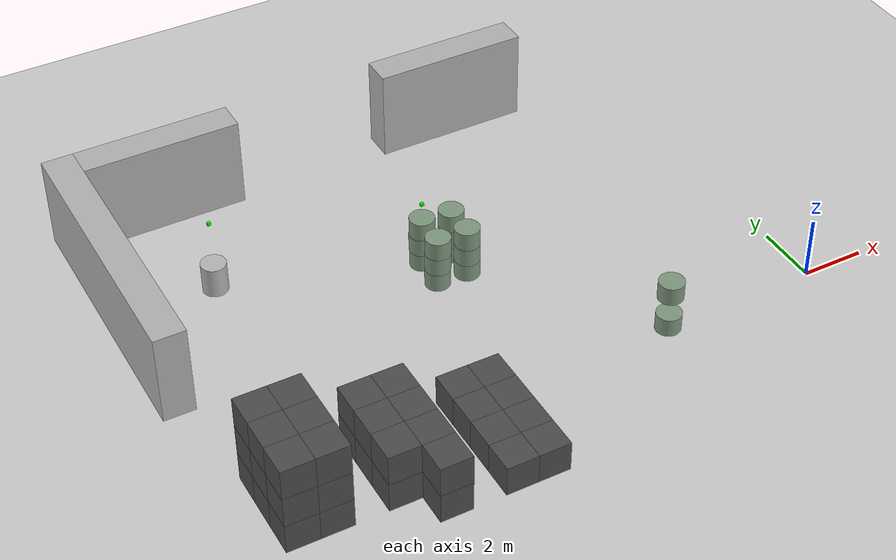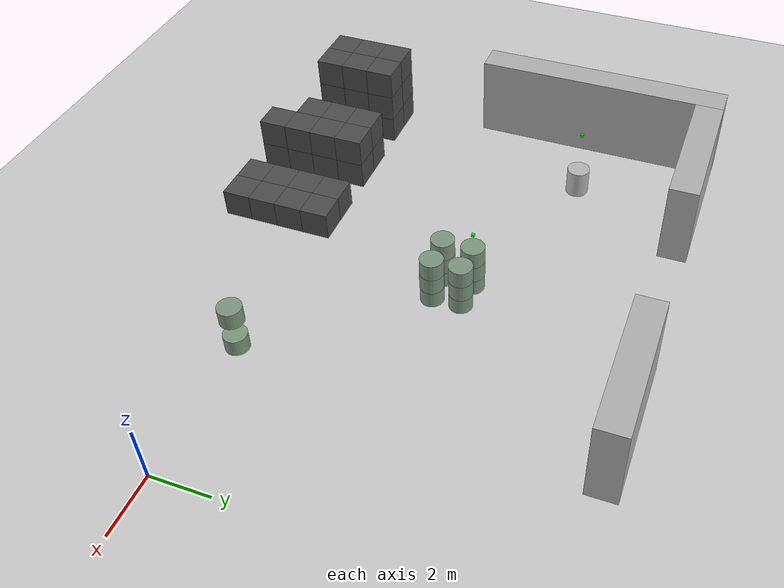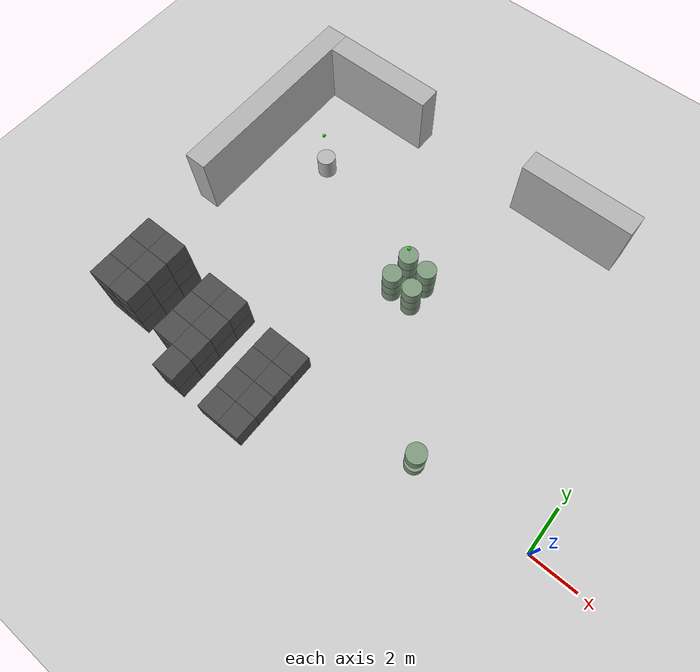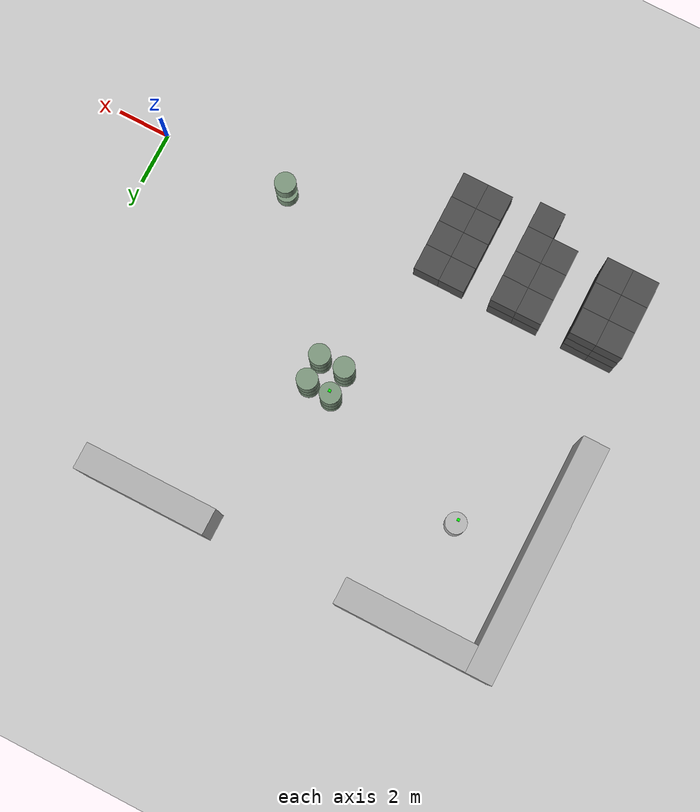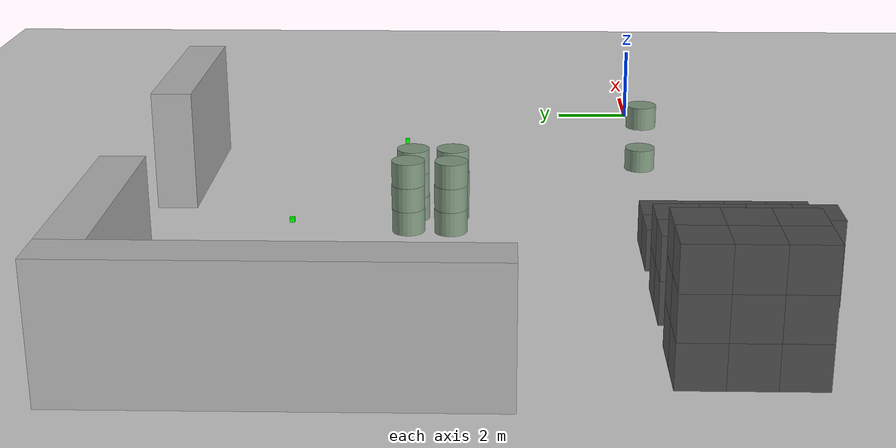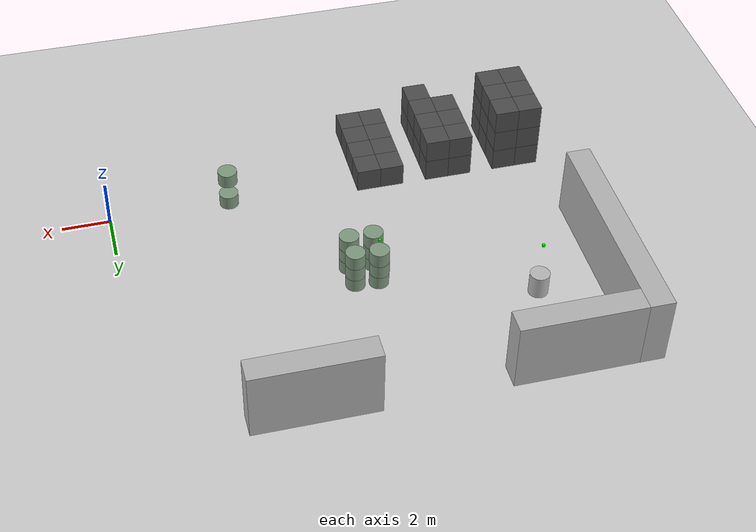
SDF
<sdf version="1.6">
 <world name="default">
  <model name="wall_1">
   <pose frame="sim_world">-19.0 8.0 1.5 0 0 0</pose>
   <static>True</static>
   <link name="wall_1_link">
    <inertial>
     <mass>100</mass>
     <inertia>
      <ixx>0.166667</ixx>
      <ixy>0</ixy>
      <ixz>0</ixz>
      <iyy>0.166667</iyy>
      <iyz>0</iyz>
      <izz>0.166667</izz>
     </inertia>
    </inertial>
    <collision name="wall_1_collision">
     <geometry><box><size>1.0 9.0 3.0</size></box></geometry>
     <max_contacts>100</max_contacts>
    </collision>
    <visual name="wall_1_visual">
     <geometry><box><size>1.0 9.0 3.0</size></box></geometry>
     <material><ambient>0.7 0.7 0.7 1</ambient><diffuse>0.7 0.7 0.7 1</diffuse></material>
    </visual>
   </link>
  </model>
  <model name="wall_9">
   <pose frame="sim_world">-16.0 12.0 1.5 0 0 0</pose>
   <static>True</static>
   <link name="wall_9_link">
    <inertial>
     <mass>100</mass>
     <inertia>
      <ixx>0.166667</ixx>
      <ixy>0</ixy>
      <ixz>0</ixz>
      <iyy>0.166667</iyy>
      <iyz>0</iyz>
      <izz>0.166667</izz>
     </inertia>
    </inertial>
    <collision name="wall_9_collision">
     <geometry><box><size>5.0 1.0 3.0</size></box></geometry>
     <max_contacts>100</max_contacts>
    </collision>
    <visual name="wall_9_visual">
     <geometry><box><size>5.0 1.0 3.0</size></box></geometry>
     <material><ambient>0.7 0.7 0.7 1</ambient><diffuse>0.7 0.7 0.7 1</diffuse></material>
    </visual>
   </link>
  </model>
  <model name="wall_10">
   <pose frame="sim_world">-6.0 12.0 1.5 0 0 0</pose>
   <static>True</static>
   <link name="wall_10_link">
    <inertial>
     <mass>100</mass>
     <inertia>
      <ixx>0.166667</ixx>
      <ixy>0</ixy>
      <ixz>0</ixz>
      <iyy>0.166667</iyy>
      <iyz>0</iyz>
      <izz>0.166667</izz>
     </inertia>
    </inertial>
    <collision name="wall_10_collision">
     <geometry><box><size>5.0 1.0 3.0</size></box></geometry>
     <max_contacts>100</max_contacts>
    </collision>
    <visual name="wall_10_visual">
     <geometry><box><size>5.0 1.0 3.0</size></box></geometry>
     <material><ambient>0.7 0.7 0.7 1</ambient><diffuse>0.7 0.7 0.7 1</diffuse></material>
    </visual>
   </link>
  </model>
  <model name="box_6">
   <pose frame="sim_world">-18.0 -2.0 0.5 0 -0 0</pose>
   <static>True</static>
   <link name="box_6_link">
    <inertial>
     <mass>100</mass>
     <inertia>
      <ixx>0.166667</ixx>
      <ixy>0</ixy>
      <ixz>0</ixz>
      <iyy>0.166667</iyy>
      <iyz>0</iyz>
      <izz>0.166667</izz>
     </inertia>
    </inertial>
    <collision name="box_6_collision">
     <geometry><box><size>1.0 1.0 1.0</size></box></geometry>
     <max_contacts>100</max_contacts>
    </collision>
    <visual name="box_6_visual">
     <geometry><box><size>1.0 1.0 1.0</size></box></geometry>
     <material><ambient>0.3 0.3 0.3 1</ambient><diffuse>0.3 0.3 0.3 1</diffuse></material>
    </visual>
   </link>
  </model>
  <model name="box_7">
   <pose frame="sim_world">-18.0 -2.0 1.5 0 -0 0</pose>
   <static>True</static>
   <link name="box_7_link">
    <inertial>
     <mass>100</mass>
     <inertia>
      <ixx>0.166667</ixx>
      <ixy>0</ixy>
      <ixz>0</ixz>
      <iyy>0.166667</iyy>
      <iyz>0</iyz>
      <izz>0.166667</izz>
     </inertia>
    </inertial>
    <collision name="box_7_collision">
     <geometry><box><size>1.0 1.0 1.0</size></box></geometry>
     <max_contacts>100</max_contacts>
    </collision>
    <visual name="box_7_visual">
     <geometry><box><size>1.0 1.0 1.0</size></box></geometry>
     <material><ambient>0.3 0.3 0.3 1</ambient><diffuse>0.3 0.3 0.3 1</diffuse></material>
    </visual>
   </link>
  </model>
  <model name="box_8">
   <pose frame="sim_world">-18.0 -2.0 2.5 0 -0 0</pose>
   <static>True</static>
   <link name="box_8_link">
    <inertial>
     <mass>100</mass>
     <inertia>
      <ixx>0.166667</ixx>
      <ixy>0</ixy>
      <ixz>0</ixz>
      <iyy>0.166667</iyy>
      <iyz>0</iyz>
      <izz>0.166667</izz>
     </inertia>
    </inertial>
    <collision name="box_8_collision">
     <geometry><box><size>1.0 1.0 1.0</size></box></geometry>
     <max_contacts>100</max_contacts>
    </collision>
    <visual name="box_8_visual">
     <geometry><box><size>1.0 1.0 1.0</size></box></geometry>
     <material><ambient>0.3 0.3 0.3 1</ambient><diffuse>0.3 0.3 0.3 1</diffuse></material>
    </visual>
   </link>
  </model>
  <model name="box_9">
   <pose frame="sim_world">-18.0 -1.0 0.5 0 -0 0</pose>
   <static>True</static>
   <link name="box_9_link">
    <inertial>
     <mass>100</mass>
     <inertia>
      <ixx>0.166667</ixx>
      <ixy>0</ixy>
      <ixz>0</ixz>
      <iyy>0.166667</iyy>
      <iyz>0</iyz>
      <izz>0.166667</izz>
     </inertia>
    </inertial>
    <collision name="box_9_collision">
     <geometry><box><size>1.0 1.0 1.0</size></box></geometry>
     <max_contacts>100</max_contacts>
    </collision>
    <visual name="box_9_visual">
     <geometry><box><size>1.0 1.0 1.0</size></box></geometry>
     <material><ambient>0.3 0.3 0.3 1</ambient><diffuse>0.3 0.3 0.3 1</diffuse></material>
    </visual>
   </link>
  </model>
  <model name="box_10">
   <pose frame="sim_world">-18.0 -1.0 1.5 0 -0 0</pose>
   <static>True</static>
   <link name="box_10_link">
    <inertial>
     <mass>100</mass>
     <inertia>
      <ixx>0.166667</ixx>
      <ixy>0</ixy>
      <ixz>0</ixz>
      <iyy>0.166667</iyy>
      <iyz>0</iyz>
      <izz>0.166667</izz>
     </inertia>
    </inertial>
    <collision name="box_10_collision">
     <geometry><box><size>1.0 1.0 1.0</size></box></geometry>
     <max_contacts>100</max_contacts>
    </collision>
    <visual name="box_10_visual">
     <geometry><box><size>1.0 1.0 1.0</size></box></geometry>
     <material><ambient>0.3 0.3 0.3 1</ambient><diffuse>0.3 0.3 0.3 1</diffuse></material>
    </visual>
   </link>
  </model>
  <model name="box_11">
   <pose frame="sim_world">-18.0 -1.0 2.5 0 -0 0</pose>
   <static>True</static>
   <link name="box_11_link">
    <inertial>
     <mass>100</mass>
     <inertia>
      <ixx>0.166667</ixx>
      <ixy>0</ixy>
      <ixz>0</ixz>
      <iyy>0.166667</iyy>
      <iyz>0</iyz>
      <izz>0.166667</izz>
     </inertia>
    </inertial>
    <collision name="box_11_collision">
     <geometry><box><size>1.0 1.0 1.0</size></box></geometry>
     <max_contacts>100</max_contacts>
    </collision>
    <visual name="box_11_visual">
     <geometry><box><size>1.0 1.0 1.0</size></box></geometry>
     <material><ambient>0.3 0.3 0.3 1</ambient><diffuse>0.3 0.3 0.3 1</diffuse></material>
    </visual>
   </link>
  </model>
  <model name="box_12">
   <pose frame="sim_world">-18.0 0.0 0.5 0 -0 0</pose>
   <static>True</static>
   <link name="box_12_link">
    <inertial>
     <mass>100</mass>
     <inertia>
      <ixx>0.166667</ixx>
      <ixy>0</ixy>
      <ixz>0</ixz>
      <iyy>0.166667</iyy>
      <iyz>0</iyz>
      <izz>0.166667</izz>
     </inertia>
    </inertial>
    <collision name="box_12_collision">
     <geometry><box><size>1.0 1.0 1.0</size></box></geometry>
     <max_contacts>100</max_contacts>
    </collision>
    <visual name="box_12_visual">
     <geometry><box><size>1.0 1.0 1.0</size></box></geometry>
     <material><ambient>0.3 0.3 0.3 1</ambient><diffuse>0.3 0.3 0.3 1</diffuse></material>
    </visual>
   </link>
  </model>
  <model name="box_13">
   <pose frame="sim_world">-18.0 0.0 1.5 0 -0 0</pose>
   <static>True</static>
   <link name="box_13_link">
    <inertial>
     <mass>100</mass>
     <inertia>
      <ixx>0.166667</ixx>
      <ixy>0</ixy>
      <ixz>0</ixz>
      <iyy>0.166667</iyy>
      <iyz>0</iyz>
      <izz>0.166667</izz>
     </inertia>
    </inertial>
    <collision name="box_13_collision">
     <geometry><box><size>1.0 1.0 1.0</size></box></geometry>
     <max_contacts>100</max_contacts>
    </collision>
    <visual name="box_13_visual">
     <geometry><box><size>1.0 1.0 1.0</size></box></geometry>
     <material><ambient>0.3 0.3 0.3 1</ambient><diffuse>0.3 0.3 0.3 1</diffuse></material>
    </visual>
   </link>
  </model>
  <model name="box_14">
   <pose frame="sim_world">-18.0 0.0 2.5 0 -0 0</pose>
   <static>True</static>
   <link name="box_14_link">
    <inertial>
     <mass>100</mass>
     <inertia>
      <ixx>0.166667</ixx>
      <ixy>0</ixy>
      <ixz>0</ixz>
      <iyy>0.166667</iyy>
      <iyz>0</iyz>
      <izz>0.166667</izz>
     </inertia>
    </inertial>
    <collision name="box_14_collision">
     <geometry><box><size>1.0 1.0 1.0</size></box></geometry>
     <max_contacts>100</max_contacts>
    </collision>
    <visual name="box_14_visual">
     <geometry><box><size>1.0 1.0 1.0</size></box></geometry>
     <material><ambient>0.3 0.3 0.3 1</ambient><diffuse>0.3 0.3 0.3 1</diffuse></material>
    </visual>
   </link>
  </model>
  <model name="box_21">
   <pose frame="sim_world">-17.0 -2.0 0.5 0 -0 0</pose>
   <static>True</static>
   <link name="box_21_link">
    <inertial>
     <mass>100</mass>
     <inertia>
      <ixx>0.166667</ixx>
      <ixy>0</ixy>
      <ixz>0</ixz>
      <iyy>0.166667</iyy>
      <iyz>0</iyz>
      <izz>0.166667</izz>
     </inertia>
    </inertial>
    <collision name="box_21_collision">
     <geometry><box><size>1.0 1.0 1.0</size></box></geometry>
     <max_contacts>100</max_contacts>
    </collision>
    <visual name="box_21_visual">
     <geometry><box><size>1.0 1.0 1.0</size></box></geometry>
     <material><ambient>0.3 0.3 0.3 1</ambient><diffuse>0.3 0.3 0.3 1</diffuse></material>
    </visual>
   </link>
  </model>
  <model name="box_22">
   <pose frame="sim_world">-17.0 -2.0 1.5 0 -0 0</pose>
   <static>True</static>
   <link name="box_22_link">
    <inertial>
     <mass>100</mass>
     <inertia>
      <ixx>0.166667</ixx>
      <ixy>0</ixy>
      <ixz>0</ixz>
      <iyy>0.166667</iyy>
      <iyz>0</iyz>
      <izz>0.166667</izz>
     </inertia>
    </inertial>
    <collision name="box_22_collision">
     <geometry><box><size>1.0 1.0 1.0</size></box></geometry>
     <max_contacts>100</max_contacts>
    </collision>
    <visual name="box_22_visual">
     <geometry><box><size>1.0 1.0 1.0</size></box></geometry>
     <material><ambient>0.3 0.3 0.3 1</ambient><diffuse>0.3 0.3 0.3 1</diffuse></material>
    </visual>
   </link>
  </model>
  <model name="box_23">
   <pose frame="sim_world">-17.0 -2.0 2.5 0 -0 0</pose>
   <static>True</static>
   <link name="box_23_link">
    <inertial>
     <mass>100</mass>
     <inertia>
      <ixx>0.166667</ixx>
      <ixy>0</ixy>
      <ixz>0</ixz>
      <iyy>0.166667</iyy>
      <iyz>0</iyz>
      <izz>0.166667</izz>
     </inertia>
    </inertial>
    <collision name="box_23_collision">
     <geometry><box><size>1.0 1.0 1.0</size></box></geometry>
     <max_contacts>100</max_contacts>
    </collision>
    <visual name="box_23_visual">
     <geometry><box><size>1.0 1.0 1.0</size></box></geometry>
     <material><ambient>0.3 0.3 0.3 1</ambient><diffuse>0.3 0.3 0.3 1</diffuse></material>
    </visual>
   </link>
  </model>
  <model name="box_24">
   <pose frame="sim_world">-17.0 -1.0 0.5 0 -0 0</pose>
   <static>True</static>
   <link name="box_24_link">
    <inertial>
     <mass>100</mass>
     <inertia>
      <ixx>0.166667</ixx>
      <ixy>0</ixy>
      <ixz>0</ixz>
      <iyy>0.166667</iyy>
      <iyz>0</iyz>
      <izz>0.166667</izz>
     </inertia>
    </inertial>
    <collision name="box_24_collision">
     <geometry><box><size>1.0 1.0 1.0</size></box></geometry>
     <max_contacts>100</max_contacts>
    </collision>
    <visual name="box_24_visual">
     <geometry><box><size>1.0 1.0 1.0</size></box></geometry>
     <material><ambient>0.3 0.3 0.3 1</ambient><diffuse>0.3 0.3 0.3 1</diffuse></material>
    </visual>
   </link>
  </model>
  <model name="box_25">
   <pose frame="sim_world">-17.0 -1.0 1.5 0 -0 0</pose>
   <static>True</static>
   <link name="box_25_link">
    <inertial>
     <mass>100</mass>
     <inertia>
      <ixx>0.166667</ixx>
      <ixy>0</ixy>
      <ixz>0</ixz>
      <iyy>0.166667</iyy>
      <iyz>0</iyz>
      <izz>0.166667</izz>
     </inertia>
    </inertial>
    <collision name="box_25_collision">
     <geometry><box><size>1.0 1.0 1.0</size></box></geometry>
     <max_contacts>100</max_contacts>
    </collision>
    <visual name="box_25_visual">
     <geometry><box><size>1.0 1.0 1.0</size></box></geometry>
     <material><ambient>0.3 0.3 0.3 1</ambient><diffuse>0.3 0.3 0.3 1</diffuse></material>
    </visual>
   </link>
  </model>
  <model name="box_26">
   <pose frame="sim_world">-17.0 -1.0 2.5 0 -0 0</pose>
   <static>True</static>
   <link name="box_26_link">
    <inertial>
     <mass>100</mass>
     <inertia>
      <ixx>0.166667</ixx>
      <ixy>0</ixy>
      <ixz>0</ixz>
      <iyy>0.166667</iyy>
      <iyz>0</iyz>
      <izz>0.166667</izz>
     </inertia>
    </inertial>
    <collision name="box_26_collision">
     <geometry><box><size>1.0 1.0 1.0</size></box></geometry>
     <max_contacts>100</max_contacts>
    </collision>
    <visual name="box_26_visual">
     <geometry><box><size>1.0 1.0 1.0</size></box></geometry>
     <material><ambient>0.3 0.3 0.3 1</ambient><diffuse>0.3 0.3 0.3 1</diffuse></material>
    </visual>
   </link>
  </model>
  <model name="box_27">
   <pose frame="sim_world">-17.0 0.0 0.5 0 -0 0</pose>
   <static>True</static>
   <link name="box_27_link">
    <inertial>
     <mass>100</mass>
     <inertia>
      <ixx>0.166667</ixx>
      <ixy>0</ixy>
      <ixz>0</ixz>
      <iyy>0.166667</iyy>
      <iyz>0</iyz>
      <izz>0.166667</izz>
     </inertia>
    </inertial>
    <collision name="box_27_collision">
     <geometry><box><size>1.0 1.0 1.0</size></box></geometry>
     <max_contacts>100</max_contacts>
    </collision>
    <visual name="box_27_visual">
     <geometry><box><size>1.0 1.0 1.0</size></box></geometry>
     <material><ambient>0.3 0.3 0.3 1</ambient><diffuse>0.3 0.3 0.3 1</diffuse></material>
    </visual>
   </link>
  </model>
  <model name="box_28">
   <pose frame="sim_world">-17.0 0.0 1.5 0 -0 0</pose>
   <static>True</static>
   <link name="box_28_link">
    <inertial>
     <mass>100</mass>
     <inertia>
      <ixx>0.166667</ixx>
      <ixy>0</ixy>
      <ixz>0</ixz>
      <iyy>0.166667</iyy>
      <iyz>0</iyz>
      <izz>0.166667</izz>
     </inertia>
    </inertial>
    <collision name="box_28_collision">
     <geometry><box><size>1.0 1.0 1.0</size></box></geometry>
     <max_contacts>100</max_contacts>
    </collision>
    <visual name="box_28_visual">
     <geometry><box><size>1.0 1.0 1.0</size></box></geometry>
     <material><ambient>0.3 0.3 0.3 1</ambient><diffuse>0.3 0.3 0.3 1</diffuse></material>
    </visual>
   </link>
  </model>
  <model name="box_29">
   <pose frame="sim_world">-17.0 0.0 2.5 0 -0 0</pose>
   <static>True</static>
   <link name="box_29_link">
    <inertial>
     <mass>100</mass>
     <inertia>
      <ixx>0.166667</ixx>
      <ixy>0</ixy>
      <ixz>0</ixz>
      <iyy>0.166667</iyy>
      <iyz>0</iyz>
      <izz>0.166667</izz>
     </inertia>
    </inertial>
    <collision name="box_29_collision">
     <geometry><box><size>1.0 1.0 1.0</size></box></geometry>
     <max_contacts>100</max_contacts>
    </collision>
    <visual name="box_29_visual">
     <geometry><box><size>1.0 1.0 1.0</size></box></geometry>
     <material><ambient>0.3 0.3 0.3 1</ambient><diffuse>0.3 0.3 0.3 1</diffuse></material>
    </visual>
   </link>
  </model>
  <model name="box_34">
   <pose frame="sim_world">-15.0 -2.0 0.5 0 -0 0</pose>
   <static>True</static>
   <link name="box_34_link">
    <inertial>
     <mass>100</mass>
     <inertia>
      <ixx>0.166667</ixx>
      <ixy>0</ixy>
      <ixz>0</ixz>
      <iyy>0.166667</iyy>
      <iyz>0</iyz>
      <izz>0.166667</izz>
     </inertia>
    </inertial>
    <collision name="box_34_collision">
     <geometry><box><size>1.0 1.0 1.0</size></box></geometry>
     <max_contacts>100</max_contacts>
    </collision>
    <visual name="box_34_visual">
     <geometry><box><size>1.0 1.0 1.0</size></box></geometry>
     <material><ambient>0.3 0.3 0.3 1</ambient><diffuse>0.3 0.3 0.3 1</diffuse></material>
    </visual>
   </link>
  </model>
  <model name="box_35">
   <pose frame="sim_world">-15.0 -2.0 1.5 0 -0 0</pose>
   <static>True</static>
   <link name="box_35_link">
    <inertial>
     <mass>100</mass>
     <inertia>
      <ixx>0.166667</ixx>
      <ixy>0</ixy>
      <ixz>0</ixz>
      <iyy>0.166667</iyy>
      <iyz>0</iyz>
      <izz>0.166667</izz>
     </inertia>
    </inertial>
    <collision name="box_35_collision">
     <geometry><box><size>1.0 1.0 1.0</size></box></geometry>
     <max_contacts>100</max_contacts>
    </collision>
    <visual name="box_35_visual">
     <geometry><box><size>1.0 1.0 1.0</size></box></geometry>
     <material><ambient>0.3 0.3 0.3 1</ambient><diffuse>0.3 0.3 0.3 1</diffuse></material>
    </visual>
   </link>
  </model>
  <model name="box_36">
   <pose frame="sim_world">-15.0 -1.0 0.5 0 -0 0</pose>
   <static>True</static>
   <link name="box_36_link">
    <inertial>
     <mass>100</mass>
     <inertia>
      <ixx>0.166667</ixx>
      <ixy>0</ixy>
      <ixz>0</ixz>
      <iyy>0.166667</iyy>
      <iyz>0</iyz>
      <izz>0.166667</izz>
     </inertia>
    </inertial>
    <collision name="box_36_collision">
     <geometry><box><size>1.0 1.0 1.0</size></box></geometry>
     <max_contacts>100</max_contacts>
    </collision>
    <visual name="box_36_visual">
     <geometry><box><size>1.0 1.0 1.0</size></box></geometry>
     <material><ambient>0.3 0.3 0.3 1</ambient><diffuse>0.3 0.3 0.3 1</diffuse></material>
    </visual>
   </link>
  </model>
  <model name="box_37">
   <pose frame="sim_world">-15.0 -1.0 1.5 0 -0 0</pose>
   <static>True</static>
   <link name="box_37_link">
    <inertial>
     <mass>100</mass>
     <inertia>
      <ixx>0.166667</ixx>
      <ixy>0</ixy>
      <ixz>0</ixz>
      <iyy>0.166667</iyy>
      <iyz>0</iyz>
      <izz>0.166667</izz>
     </inertia>
    </inertial>
    <collision name="box_37_collision">
     <geometry><box><size>1.0 1.0 1.0</size></box></geometry>
     <max_contacts>100</max_contacts>
    </collision>
    <visual name="box_37_visual">
     <geometry><box><size>1.0 1.0 1.0</size></box></geometry>
     <material><ambient>0.3 0.3 0.3 1</ambient><diffuse>0.3 0.3 0.3 1</diffuse></material>
    </visual>
   </link>
  </model>
  <model name="box_38">
   <pose frame="sim_world">-15.0 0.0 0.5 0 -0 0</pose>
   <static>True</static>
   <link name="box_38_link">
    <inertial>
     <mass>100</mass>
     <inertia>
      <ixx>0.166667</ixx>
      <ixy>0</ixy>
      <ixz>0</ixz>
      <iyy>0.166667</iyy>
      <iyz>0</iyz>
      <izz>0.166667</izz>
     </inertia>
    </inertial>
    <collision name="box_38_collision">
     <geometry><box><size>1.0 1.0 1.0</size></box></geometry>
     <max_contacts>100</max_contacts>
    </collision>
    <visual name="box_38_visual">
     <geometry><box><size>1.0 1.0 1.0</size></box></geometry>
     <material><ambient>0.3 0.3 0.3 1</ambient><diffuse>0.3 0.3 0.3 1</diffuse></material>
    </visual>
   </link>
  </model>
  <model name="box_39">
   <pose frame="sim_world">-15.0 0.0 1.5 0 -0 0</pose>
   <static>True</static>
   <link name="box_39_link">
    <inertial>
     <mass>100</mass>
     <inertia>
      <ixx>0.166667</ixx>
      <ixy>0</ixy>
      <ixz>0</ixz>
      <iyy>0.166667</iyy>
      <iyz>0</iyz>
      <izz>0.166667</izz>
     </inertia>
    </inertial>
    <collision name="box_39_collision">
     <geometry><box><size>1.0 1.0 1.0</size></box></geometry>
     <max_contacts>100</max_contacts>
    </collision>
    <visual name="box_39_visual">
     <geometry><box><size>1.0 1.0 1.0</size></box></geometry>
     <material><ambient>0.3 0.3 0.3 1</ambient><diffuse>0.3 0.3 0.3 1</diffuse></material>
    </visual>
   </link>
  </model>
  <model name="box_42">
   <pose frame="sim_world">-14.0 -3.0 0.5 0 -0 0</pose>
   <static>True</static>
   <link name="box_42_link">
    <inertial>
     <mass>100</mass>
     <inertia>
      <ixx>0.166667</ixx>
      <ixy>0</ixy>
      <ixz>0</ixz>
      <iyy>0.166667</iyy>
      <iyz>0</iyz>
      <izz>0.166667</izz>
     </inertia>
    </inertial>
    <collision name="box_42_collision">
     <geometry><box><size>1.0 1.0 1.0</size></box></geometry>
     <max_contacts>100</max_contacts>
    </collision>
    <visual name="box_42_visual">
     <geometry><box><size>1.0 1.0 1.0</size></box></geometry>
     <material><ambient>0.3 0.3 0.3 1</ambient><diffuse>0.3 0.3 0.3 1</diffuse></material>
    </visual>
   </link>
  </model>
  <model name="box_43">
   <pose frame="sim_world">-14.0 -3.0 1.5 0 -0 0</pose>
   <static>True</static>
   <link name="box_43_link">
    <inertial>
     <mass>100</mass>
     <inertia>
      <ixx>0.166667</ixx>
      <ixy>0</ixy>
      <ixz>0</ixz>
      <iyy>0.166667</iyy>
      <iyz>0</iyz>
      <izz>0.166667</izz>
     </inertia>
    </inertial>
    <collision name="box_43_collision">
     <geometry><box><size>1.0 1.0 1.0</size></box></geometry>
     <max_contacts>100</max_contacts>
    </collision>
    <visual name="box_43_visual">
     <geometry><box><size>1.0 1.0 1.0</size></box></geometry>
     <material><ambient>0.3 0.3 0.3 1</ambient><diffuse>0.3 0.3 0.3 1</diffuse></material>
    </visual>
   </link>
  </model>
  <model name="box_44">
   <pose frame="sim_world">-14.0 -2.0 0.5 0 -0 0</pose>
   <static>True</static>
   <link name="box_44_link">
    <inertial>
     <mass>100</mass>
     <inertia>
      <ixx>0.166667</ixx>
      <ixy>0</ixy>
      <ixz>0</ixz>
      <iyy>0.166667</iyy>
      <iyz>0</iyz>
      <izz>0.166667</izz>
     </inertia>
    </inertial>
    <collision name="box_44_collision">
     <geometry><box><size>1.0 1.0 1.0</size></box></geometry>
     <max_contacts>100</max_contacts>
    </collision>
    <visual name="box_44_visual">
     <geometry><box><size>1.0 1.0 1.0</size></box></geometry>
     <material><ambient>0.3 0.3 0.3 1</ambient><diffuse>0.3 0.3 0.3 1</diffuse></material>
    </visual>
   </link>
  </model>
  <model name="box_45">
   <pose frame="sim_world">-14.0 -2.0 1.5 0 -0 0</pose>
   <static>True</static>
   <link name="box_45_link">
    <inertial>
     <mass>100</mass>
     <inertia>
      <ixx>0.166667</ixx>
      <ixy>0</ixy>
      <ixz>0</ixz>
      <iyy>0.166667</iyy>
      <iyz>0</iyz>
      <izz>0.166667</izz>
     </inertia>
    </inertial>
    <collision name="box_45_collision">
     <geometry><box><size>1.0 1.0 1.0</size></box></geometry>
     <max_contacts>100</max_contacts>
    </collision>
    <visual name="box_45_visual">
     <geometry><box><size>1.0 1.0 1.0</size></box></geometry>
     <material><ambient>0.3 0.3 0.3 1</ambient><diffuse>0.3 0.3 0.3 1</diffuse></material>
    </visual>
   </link>
  </model>
  <model name="box_46">
   <pose frame="sim_world">-14.0 -1.0 0.5 0 -0 0</pose>
   <static>True</static>
   <link name="box_46_link">
    <inertial>
     <mass>100</mass>
     <inertia>
      <ixx>0.166667</ixx>
      <ixy>0</ixy>
      <ixz>0</ixz>
      <iyy>0.166667</iyy>
      <iyz>0</iyz>
      <izz>0.166667</izz>
     </inertia>
    </inertial>
    <collision name="box_46_collision">
     <geometry><box><size>1.0 1.0 1.0</size></box></geometry>
     <max_contacts>100</max_contacts>
    </collision>
    <visual name="box_46_visual">
     <geometry><box><size>1.0 1.0 1.0</size></box></geometry>
     <material><ambient>0.3 0.3 0.3 1</ambient><diffuse>0.3 0.3 0.3 1</diffuse></material>
    </visual>
   </link>
  </model>
  <model name="box_47">
   <pose frame="sim_world">-14.0 -1.0 1.5 0 -0 0</pose>
   <static>True</static>
   <link name="box_47_link">
    <inertial>
     <mass>100</mass>
     <inertia>
      <ixx>0.166667</ixx>
      <ixy>0</ixy>
      <ixz>0</ixz>
      <iyy>0.166667</iyy>
      <iyz>0</iyz>
      <izz>0.166667</izz>
     </inertia>
    </inertial>
    <collision name="box_47_collision">
     <geometry><box><size>1.0 1.0 1.0</size></box></geometry>
     <max_contacts>100</max_contacts>
    </collision>
    <visual name="box_47_visual">
     <geometry><box><size>1.0 1.0 1.0</size></box></geometry>
     <material><ambient>0.3 0.3 0.3 1</ambient><diffuse>0.3 0.3 0.3 1</diffuse></material>
    </visual>
   </link>
  </model>
  <model name="box_48">
   <pose frame="sim_world">-14.0 0.0 0.5 0 -0 0</pose>
   <static>True</static>
   <link name="box_48_link">
    <inertial>
     <mass>100</mass>
     <inertia>
      <ixx>0.166667</ixx>
      <ixy>0</ixy>
      <ixz>0</ixz>
      <iyy>0.166667</iyy>
      <iyz>0</iyz>
      <izz>0.166667</izz>
     </inertia>
    </inertial>
    <collision name="box_48_collision">
     <geometry><box><size>1.0 1.0 1.0</size></box></geometry>
     <max_contacts>100</max_contacts>
    </collision>
    <visual name="box_48_visual">
     <geometry><box><size>1.0 1.0 1.0</size></box></geometry>
     <material><ambient>0.3 0.3 0.3 1</ambient><diffuse>0.3 0.3 0.3 1</diffuse></material>
    </visual>
   </link>
  </model>
  <model name="box_49">
   <pose frame="sim_world">-14.0 0.0 1.5 0 -0 0</pose>
   <static>True</static>
   <link name="box_49_link">
    <inertial>
     <mass>100</mass>
     <inertia>
      <ixx>0.166667</ixx>
      <ixy>0</ixy>
      <ixz>0</ixz>
      <iyy>0.166667</iyy>
      <iyz>0</iyz>
      <izz>0.166667</izz>
     </inertia>
    </inertial>
    <collision name="box_49_collision">
     <geometry><box><size>1.0 1.0 1.0</size></box></geometry>
     <max_contacts>100</max_contacts>
    </collision>
    <visual name="box_49_visual">
     <geometry><box><size>1.0 1.0 1.0</size></box></geometry>
     <material><ambient>0.3 0.3 0.3 1</ambient><diffuse>0.3 0.3 0.3 1</diffuse></material>
    </visual>
   </link>
  </model>
  <model name="box_51">
   <pose frame="sim_world">-12.0 -3.0 0.5 0 -0 0</pose>
   <static>True</static>
   <link name="box_51_link">
    <inertial>
     <mass>100</mass>
     <inertia>
      <ixx>0.166667</ixx>
      <ixy>0</ixy>
      <ixz>0</ixz>
      <iyy>0.166667</iyy>
      <iyz>0</iyz>
      <izz>0.166667</izz>
     </inertia>
    </inertial>
    <collision name="box_51_collision">
     <geometry><box><size>1.0 1.0 1.0</size></box></geometry>
     <max_contacts>100</max_contacts>
    </collision>
    <visual name="box_51_visual">
     <geometry><box><size>1.0 1.0 1.0</size></box></geometry>
     <material><ambient>0.3 0.3 0.3 1</ambient><diffuse>0.3 0.3 0.3 1</diffuse></material>
    </visual>
   </link>
  </model>
  <model name="box_52">
   <pose frame="sim_world">-12.0 -2.0 0.5 0 -0 0</pose>
   <static>True</static>
   <link name="box_52_link">
    <inertial>
     <mass>100</mass>
     <inertia>
      <ixx>0.166667</ixx>
      <ixy>0</ixy>
      <ixz>0</ixz>
      <iyy>0.166667</iyy>
      <iyz>0</iyz>
      <izz>0.166667</izz>
     </inertia>
    </inertial>
    <collision name="box_52_collision">
     <geometry><box><size>1.0 1.0 1.0</size></box></geometry>
     <max_contacts>100</max_contacts>
    </collision>
    <visual name="box_52_visual">
     <geometry><box><size>1.0 1.0 1.0</size></box></geometry>
     <material><ambient>0.3 0.3 0.3 1</ambient><diffuse>0.3 0.3 0.3 1</diffuse></material>
    </visual>
   </link>
  </model>
  <model name="box_53">
   <pose frame="sim_world">-12.0 -1.0 0.5 0 -0 0</pose>
   <static>True</static>
   <link name="box_53_link">
    <inertial>
     <mass>100</mass>
     <inertia>
      <ixx>0.166667</ixx>
      <ixy>0</ixy>
      <ixz>0</ixz>
      <iyy>0.166667</iyy>
      <iyz>0</iyz>
      <izz>0.166667</izz>
     </inertia>
    </inertial>
    <collision name="box_53_collision">
     <geometry><box><size>1.0 1.0 1.0</size></box></geometry>
     <max_contacts>100</max_contacts>
    </collision>
    <visual name="box_53_visual">
     <geometry><box><size>1.0 1.0 1.0</size></box></geometry>
     <material><ambient>0.3 0.3 0.3 1</ambient><diffuse>0.3 0.3 0.3 1</diffuse></material>
    </visual>
   </link>
  </model>
  <model name="box_54">
   <pose frame="sim_world">-12.0 0.0 0.5 0 -0 0</pose>
   <static>True</static>
   <link name="box_54_link">
    <inertial>
     <mass>100</mass>
     <inertia>
      <ixx>0.166667</ixx>
      <ixy>0</ixy>
      <ixz>0</ixz>
      <iyy>0.166667</iyy>
      <iyz>0</iyz>
      <izz>0.166667</izz>
     </inertia>
    </inertial>
    <collision name="box_54_collision">
     <geometry><box><size>1.0 1.0 1.0</size></box></geometry>
     <max_contacts>100</max_contacts>
    </collision>
    <visual name="box_54_visual">
     <geometry><box><size>1.0 1.0 1.0</size></box></geometry>
     <material><ambient>0.3 0.3 0.3 1</ambient><diffuse>0.3 0.3 0.3 1</diffuse></material>
    </visual>
   </link>
  </model>
  <model name="box_56">
   <pose frame="sim_world">-11.0 -3.0 0.5 0 -0 0</pose>
   <static>True</static>
   <link name="box_56_link">
    <inertial>
     <mass>100</mass>
     <inertia>
      <ixx>0.166667</ixx>
      <ixy>0</ixy>
      <ixz>0</ixz>
      <iyy>0.166667</iyy>
      <iyz>0</iyz>
      <izz>0.166667</izz>
     </inertia>
    </inertial>
    <collision name="box_56_collision">
     <geometry><box><size>1.0 1.0 1.0</size></box></geometry>
     <max_contacts>100</max_contacts>
    </collision>
    <visual name="box_56_visual">
     <geometry><box><size>1.0 1.0 1.0</size></box></geometry>
     <material><ambient>0.3 0.3 0.3 1</ambient><diffuse>0.3 0.3 0.3 1</diffuse></material>
    </visual>
   </link>
  </model>
  <model name="box_57">
   <pose frame="sim_world">-11.0 -2.0 0.5 0 -0 0</pose>
   <static>True</static>
   <link name="box_57_link">
    <inertial>
     <mass>100</mass>
     <inertia>
      <ixx>0.166667</ixx>
      <ixy>0</ixy>
      <ixz>0</ixz>
      <iyy>0.166667</iyy>
      <iyz>0</iyz>
      <izz>0.166667</izz>
     </inertia>
    </inertial>
    <collision name="box_57_collision">
     <geometry><box><size>1.0 1.0 1.0</size></box></geometry>
     <max_contacts>100</max_contacts>
    </collision>
    <visual name="box_57_visual">
     <geometry><box><size>1.0 1.0 1.0</size></box></geometry>
     <material><ambient>0.3 0.3 0.3 1</ambient><diffuse>0.3 0.3 0.3 1</diffuse></material>
    </visual>
   </link>
  </model>
  <model name="box_58">
   <pose frame="sim_world">-11.0 -1.0 0.5 0 -0 0</pose>
   <static>True</static>
   <link name="box_58_link">
    <inertial>
     <mass>100</mass>
     <inertia>
      <ixx>0.166667</ixx>
      <ixy>0</ixy>
      <ixz>0</ixz>
      <iyy>0.166667</iyy>
      <iyz>0</iyz>
      <izz>0.166667</izz>
     </inertia>
    </inertial>
    <collision name="box_58_collision">
     <geometry><box><size>1.0 1.0 1.0</size></box></geometry>
     <max_contacts>100</max_contacts>
    </collision>
    <visual name="box_58_visual">
     <geometry><box><size>1.0 1.0 1.0</size></box></geometry>
     <material><ambient>0.3 0.3 0.3 1</ambient><diffuse>0.3 0.3 0.3 1</diffuse></material>
    </visual>
   </link>
  </model>
  <model name="box_59">
   <pose frame="sim_world">-11.0 0.0 0.5 0 -0 0</pose>
   <static>True</static>
   <link name="box_59_link">
    <inertial>
     <mass>100</mass>
     <inertia>
      <ixx>0.166667</ixx>
      <ixy>0</ixy>
      <ixz>0</ixz>
      <iyy>0.166667</iyy>
      <iyz>0</iyz>
      <izz>0.166667</izz>
     </inertia>
    </inertial>
    <collision name="box_59_collision">
     <geometry><box><size>1.0 1.0 1.0</size></box></geometry>
     <max_contacts>100</max_contacts>
    </collision>
    <visual name="box_59_visual">
     <geometry><box><size>1.0 1.0 1.0</size></box></geometry>
     <material><ambient>0.3 0.3 0.3 1</ambient><diffuse>0.3 0.3 0.3 1</diffuse></material>
    </visual>
   </link>
  </model>
  <model name="cylinder_42">
   <pose frame="sim_world">-10.0202933208 5.0030478125 0.3 0 -0 0</pose>
   <static>True</static>
   <link name="cylinder_42_link">
    <inertial>
     <mass>100</mass>
     <inertia><ixx>0.145833</ixx><ixy>0</ixy><ixz>0</ixz><iyy>0.145833</iyy><iyz>0</iyz><izz>0.125</izz></inertia>
    </inertial>
    <collision name="cylinder_42_collision">
     <geometry><cylinder><length>0.6</length><radius>0.4</radius></cylinder></geometry>
     <max_contacts>100</max_contacts>
    </collision>
    <visual name="cylinder_42_visual">
     <geometry><cylinder><length>0.6</length><radius>0.4</radius></cylinder></geometry>
     <material><ambient>0.5 0.6 0.5 1</ambient><diffuse>0.5 0.6 0.5 1</diffuse></material>
    </visual>
   </link>
  </model>
  <model name="cylinder_43">
   <pose frame="sim_world">-10.0160368584 5.00052435981 0.9 0 -0 0</pose>
   <static>True</static>
   <link name="cylinder_43_link">
    <inertial>
     <mass>100</mass>
     <inertia><ixx>0.145833</ixx><ixy>0</ixy><ixz>0</ixz><iyy>0.145833</iyy><iyz>0</iyz><izz>0.125</izz></inertia>
    </inertial>
    <collision name="cylinder_43_collision">
     <geometry><cylinder><length>0.6</length><radius>0.4</radius></cylinder></geometry>
     <max_contacts>100</max_contacts>
    </collision>
    <visual name="cylinder_43_visual">
     <geometry><cylinder><length>0.6</length><radius>0.4</radius></cylinder></geometry>
     <material><ambient>0.5 0.6 0.5 1</ambient><diffuse>0.5 0.6 0.5 1</diffuse></material>
    </visual>
   </link>
  </model>
  <model name="cylinder_44">
   <pose frame="sim_world">-10.0080171585 4.98920138637 1.5 0 -0 0</pose>
   <static>True</static>
   <link name="cylinder_44_link">
    <inertial>
     <mass>100</mass>
     <inertia><ixx>0.145833</ixx><ixy>0</ixy><ixz>0</ixz><iyy>0.145833</iyy><iyz>0</iyz><izz>0.125</izz></inertia>
    </inertial>
    <collision name="cylinder_44_collision">
     <geometry><cylinder><length>0.6</length><radius>0.4</radius></cylinder></geometry>
     <max_contacts>100</max_contacts>
    </collision>
    <visual name="cylinder_44_visual">
     <geometry><cylinder><length>0.6</length><radius>0.4</radius></cylinder></geometry>
     <material><ambient>0.5 0.6 0.5 1</ambient><diffuse>0.5 0.6 0.5 1</diffuse></material>
    </visual>
   </link>
  </model>
  <model name="cylinder_45">
   <pose frame="sim_world">-9.99338973556 6.03151803693 0.3 0 -0 0</pose>
   <static>True</static>
   <link name="cylinder_45_link">
    <inertial>
     <mass>100</mass>
     <inertia><ixx>0.145833</ixx><ixy>0</ixy><ixz>0</ixz><iyy>0.145833</iyy><iyz>0</iyz><izz>0.125</izz></inertia>
    </inertial>
    <collision name="cylinder_45_collision">
     <geometry><cylinder><length>0.6</length><radius>0.4</radius></cylinder></geometry>
     <max_contacts>100</max_contacts>
    </collision>
    <visual name="cylinder_45_visual">
     <geometry><cylinder><length>0.6</length><radius>0.4</radius></cylinder></geometry>
     <material><ambient>0.5 0.6 0.5 1</ambient><diffuse>0.5 0.6 0.5 1</diffuse></material>
    </visual>
   </link>
   <model name="radiation_source_cylinder_45">
    <static>true</static>
    <link name="link_radiation_source_cylinder_45">
     <visual name="visual_radiation_source_cylinder_45_0">
      <geometry><box><size>0.1 0.1 0.1</size></box></geometry>
      <material><ambient>1 0.0  0 1.0</ambient><diffuse>1 0.0  0 1.0</diffuse></material>
     </visual>
     <visual name="visual_radiation_source_cylinder_45_1">
      <pose>0 0 2.0 0 0 0</pose>
      <geometry><box><size>0.1 0.1 0.1</size></box></geometry>
      <material><ambient>0 1.0  0 1.0</ambient><diffuse>0 1.0  0 1.0</diffuse></material>
     </visual>
     <sensor name="radiation_source_cylinder_45" type="radiation_source">
      <always_on>1</always_on>
      <update_rate>1.0</update_rate>
      <topic>source_2/gamma</topic>
      <plugin filename="libradiation_source_plugin.so" name="radiation_source_plugin"/>
     </sensor>
    </link>
   </model>
  </model>
  <model name="cylinder_46">
   <pose frame="sim_world">-10.0088004719 6.03712128335 0.9 0 -0 0</pose>
   <static>True</static>
   <link name="cylinder_46_link">
    <inertial>
     <mass>100</mass>
     <inertia><ixx>0.145833</ixx><ixy>0</ixy><ixz>0</ixz><iyy>0.145833</iyy><iyz>0</iyz><izz>0.125</izz></inertia>
    </inertial>
    <collision name="cylinder_46_collision">
     <geometry><cylinder><length>0.6</length><radius>0.4</radius></cylinder></geometry>
     <max_contacts>100</max_contacts>
    </collision>
    <visual name="cylinder_46_visual">
     <geometry><cylinder><length>0.6</length><radius>0.4</radius></cylinder></geometry>
     <material><ambient>0.5 0.6 0.5 1</ambient><diffuse>0.5 0.6 0.5 1</diffuse></material>
    </visual>
   </link>
  </model>
  <model name="cylinder_47">
   <pose frame="sim_world">-9.99636193501 6.03040588928 1.5 0 -0 0</pose>
   <static>True</static>
   <link name="cylinder_47_link">
    <inertial>
     <mass>100</mass>
     <inertia><ixx>0.145833</ixx><ixy>0</ixy><ixz>0</ixz><iyy>0.145833</iyy><iyz>0</iyz><izz>0.125</izz></inertia>
    </inertial>
    <collision name="cylinder_47_collision">
     <geometry><cylinder><length>0.6</length><radius>0.4</radius></cylinder></geometry>
     <max_contacts>100</max_contacts>
    </collision>
    <visual name="cylinder_47_visual">
     <geometry><cylinder><length>0.6</length><radius>0.4</radius></cylinder></geometry>
     <material><ambient>0.5 0.6 0.5 1</ambient><diffuse>0.5 0.6 0.5 1</diffuse></material>
    </visual>
   </link>
  </model>
  <model name="cylinder_48">
   <pose frame="sim_world">-9.02334739979 4.97692593154 0.3 0 -0 0</pose>
   <static>True</static>
   <link name="cylinder_48_link">
    <inertial>
     <mass>100</mass>
     <inertia><ixx>0.145833</ixx><ixy>0</ixy><ixz>0</ixz><iyy>0.145833</iyy><iyz>0</iyz><izz>0.125</izz></inertia>
    </inertial>
    <collision name="cylinder_48_collision">
     <geometry><cylinder><length>0.6</length><radius>0.4</radius></cylinder></geometry>
     <max_contacts>100</max_contacts>
    </collision>
    <visual name="cylinder_48_visual">
     <geometry><cylinder><length>0.6</length><radius>0.4</radius></cylinder></geometry>
     <material><ambient>0.5 0.6 0.5 1</ambient><diffuse>0.5 0.6 0.5 1</diffuse></material>
    </visual>
   </link>
  </model>
  <model name="cylinder_49">
   <pose frame="sim_world">-9.02772871434 4.96734218823 0.9 0 -0 0</pose>
   <static>True</static>
   <link name="cylinder_49_link">
    <inertial>
     <mass>100</mass>
     <inertia><ixx>0.145833</ixx><ixy>0</ixy><ixz>0</ixz><iyy>0.145833</iyy><iyz>0</iyz><izz>0.125</izz></inertia>
    </inertial>
    <collision name="cylinder_49_collision">
     <geometry><cylinder><length>0.6</length><radius>0.4</radius></cylinder></geometry>
     <max_contacts>100</max_contacts>
    </collision>
    <visual name="cylinder_49_visual">
     <geometry><cylinder><length>0.6</length><radius>0.4</radius></cylinder></geometry>
     <material><ambient>0.5 0.6 0.5 1</ambient><diffuse>0.5 0.6 0.5 1</diffuse></material>
    </visual>
   </link>
  </model>
  <model name="cylinder_50">
   <pose frame="sim_world">-9.02396796643 4.97896215638 1.5 0 -0 0</pose>
   <static>True</static>
   <link name="cylinder_50_link">
    <inertial>
     <mass>100</mass>
     <inertia><ixx>0.145833</ixx><ixy>0</ixy><ixz>0</ixz><iyy>0.145833</iyy><iyz>0</iyz><izz>0.125</izz></inertia>
    </inertial>
    <collision name="cylinder_50_collision">
     <geometry><cylinder><length>0.6</length><radius>0.4</radius></cylinder></geometry>
     <max_contacts>100</max_contacts>
    </collision>
    <visual name="cylinder_50_visual">
     <geometry><cylinder><length>0.6</length><radius>0.4</radius></cylinder></geometry>
     <material><ambient>0.5 0.6 0.5 1</ambient><diffuse>0.5 0.6 0.5 1</diffuse></material>
    </visual>
   </link>
  </model>
  <model name="cylinder_51">
   <pose frame="sim_world">-9.05182866777 5.95392791205 0.3 0 -0 0</pose>
   <static>True</static>
   <link name="cylinder_51_link">
    <inertial>
     <mass>100</mass>
     <inertia><ixx>0.145833</ixx><ixy>0</ixy><ixz>0</ixz><iyy>0.145833</iyy><iyz>0</iyz><izz>0.125</izz></inertia>
    </inertial>
    <collision name="cylinder_51_collision">
     <geometry><cylinder><length>0.6</length><radius>0.4</radius></cylinder></geometry>
     <max_contacts>100</max_contacts>
    </collision>
    <visual name="cylinder_51_visual">
     <geometry><cylinder><length>0.6</length><radius>0.4</radius></cylinder></geometry>
     <material><ambient>0.5 0.6 0.5 1</ambient><diffuse>0.5 0.6 0.5 1</diffuse></material>
    </visual>
   </link>
  </model>
  <model name="cylinder_52">
   <pose frame="sim_world">-9.04150532906 5.95996382125 0.9 0 -0 0</pose>
   <static>True</static>
   <link name="cylinder_52_link">
    <inertial>
     <mass>100</mass>
     <inertia><ixx>0.145833</ixx><ixy>0</ixy><ixz>0</ixz><iyy>0.145833</iyy><iyz>0</iyz><izz>0.125</izz></inertia>
    </inertial>
    <collision name="cylinder_52_collision">
     <geometry><cylinder><length>0.6</length><radius>0.4</radius></cylinder></geometry>
     <max_contacts>100</max_contacts>
    </collision>
    <visual name="cylinder_52_visual">
     <geometry><cylinder><length>0.6</length><radius>0.4</radius></cylinder></geometry>
     <material><ambient>0.5 0.6 0.5 1</ambient><diffuse>0.5 0.6 0.5 1</diffuse></material>
    </visual>
   </link>
  </model>
  <model name="cylinder_53">
   <pose frame="sim_world">-9.04081474595 5.95554203454 1.5 0 -0 0</pose>
   <static>True</static>
   <link name="cylinder_53_link">
    <inertial>
     <mass>100</mass>
     <inertia><ixx>0.145833</ixx><ixy>0</ixy><ixz>0</ixz><iyy>0.145833</iyy><iyz>0</iyz><izz>0.125</izz></inertia>
    </inertial>
    <collision name="cylinder_53_collision">
     <geometry><cylinder><length>0.6</length><radius>0.4</radius></cylinder></geometry>
     <max_contacts>100</max_contacts>
    </collision>
    <visual name="cylinder_53_visual">
     <geometry><cylinder><length>0.6</length><radius>0.4</radius></cylinder></geometry>
     <material><ambient>0.5 0.6 0.5 1</ambient><diffuse>0.5 0.6 0.5 1</diffuse></material>
    </visual>
   </link>
  </model>
  <model name="cylinder_69">
   <pose frame="sim_world">-5.03713192794 -0.0112006850342 0.3 0 -0 0</pose>
   <static>True</static>
   <link name="cylinder_69_link">
    <inertial>
     <mass>100</mass>
     <inertia><ixx>0.145833</ixx><ixy>0</ixy><ixz>0</ixz><iyy>0.145833</iyy><iyz>0</iyz><izz>0.125</izz></inertia>
    </inertial>
    <collision name="cylinder_69_collision">
     <geometry><cylinder><length>0.6</length><radius>0.4</radius></cylinder></geometry>
     <max_contacts>100</max_contacts>
    </collision>
    <visual name="cylinder_69_visual">
     <geometry><cylinder><length>0.6</length><radius>0.4</radius></cylinder></geometry>
     <material><ambient>0.5 0.6 0.5 1</ambient><diffuse>0.5 0.6 0.5 1</diffuse></material>
    </visual>
   </link>
  </model>
  <model name="cylinder_71">
   <pose frame="sim_world">-5.03649922881 -0.00224045354012 1.5 0 -0 0</pose>
   <static>True</static>
   <link name="cylinder_71_link">
    <inertial>
     <mass>100</mass>
     <inertia><ixx>0.145833</ixx><ixy>0</ixy><ixz>0</ixz><iyy>0.145833</iyy><iyz>0</iyz><izz>0.125</izz></inertia>
    </inertial>
    <collision name="cylinder_71_collision">
     <geometry><cylinder><length>0.6</length><radius>0.4</radius></cylinder></geometry>
     <max_contacts>100</max_contacts>
    </collision>
    <visual name="cylinder_71_visual">
     <geometry><cylinder><length>0.6</length><radius>0.4</radius></cylinder></geometry>
     <material><ambient>0.5 0.6 0.5 1</ambient><diffuse>0.5 0.6 0.5 1</diffuse></material>
    </visual>
   </link>
  </model>
  <model name="barrel_1">
   <pose>-16.0 8.0 0.5 0 -0 0</pose>
   <static>true</static>
   <link name="link_barrel_1">
    <collision name="collision_barrel_1">
     <geometry><mesh><uri>model://base_environment/models/barrel_1.dae</uri></mesh></geometry>
    </collision>
    <visual name="visual_barrel_1">
     <geometry><mesh><uri>model://base_environment/models/barrel_1.dae</uri></mesh></geometry>
    </visual>
   </link>
   <model name="radiation_source_barrel_1">
    <pose>-1.72853469849e-06 -1.72853469849e-06 -1.72853469849e-06 0 0 0</pose>
    <static>true</static>
    <link name="link_radiation_source_barrel_1">
     <visual name="visual_radiation_source_barrel_1_0">
      <geometry><box><size>0.1 0.1 0.1</size></box></geometry>
      <material><ambient>1 0.0  0 1.0</ambient><diffuse>1 0.0  0 1.0</diffuse></material>
     </visual>
     <visual name="visual_radiation_source_barrel_1_1">
      <pose>0 0 2.0 0 0 0</pose>
      <geometry><box><size>0.1 0.1 0.1</size></box></geometry>
      <material><ambient>0 1.0  0 1.0</ambient><diffuse>0 1.0  0 1.0</diffuse></material>
     </visual>
     <sensor name="radiation_source_barrel_1" type="radiation_source">
      <always_on>1</always_on>
      <update_rate>1.0</update_rate>
      <topic>source_0/gamma</topic>
      <plugin filename="libradiation_source_plugin.so" name="radiation_source_plugin"/>
     </sensor>
    </link>
   </model>
  </model>
  <include><uri>model://ground_plane</uri></include>
  <model name="ground_plane"><link name="ground_plane"/></model>
 </world>
</sdf>
